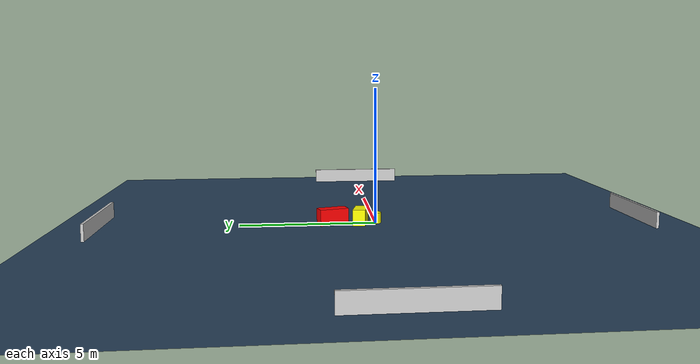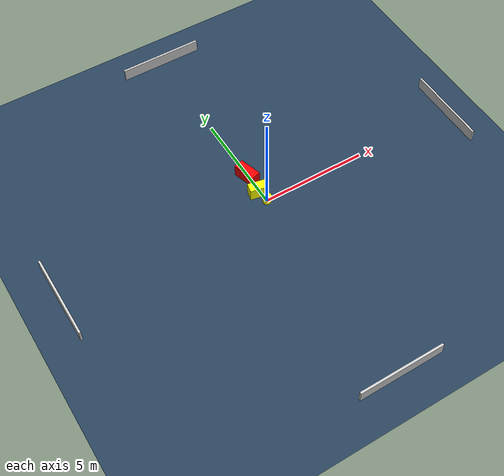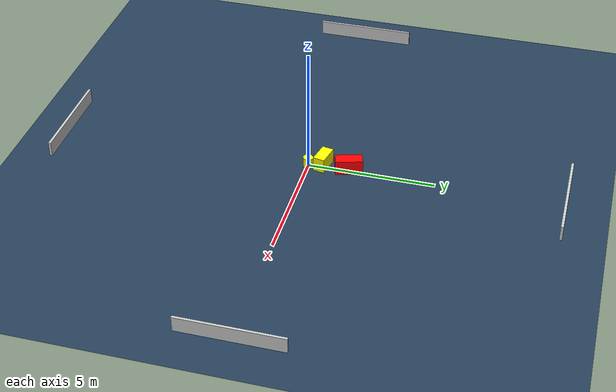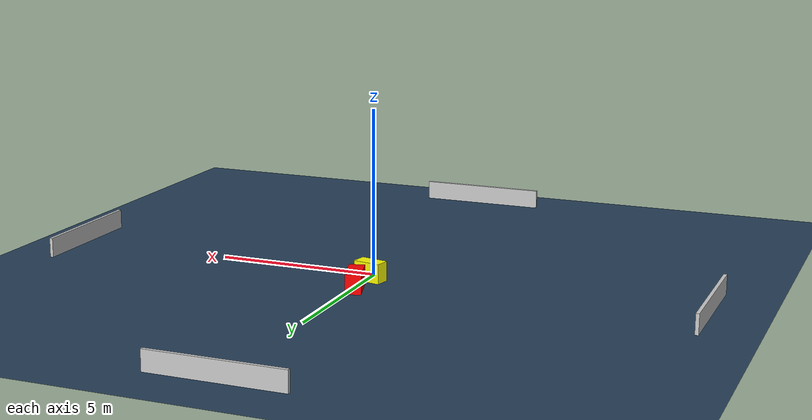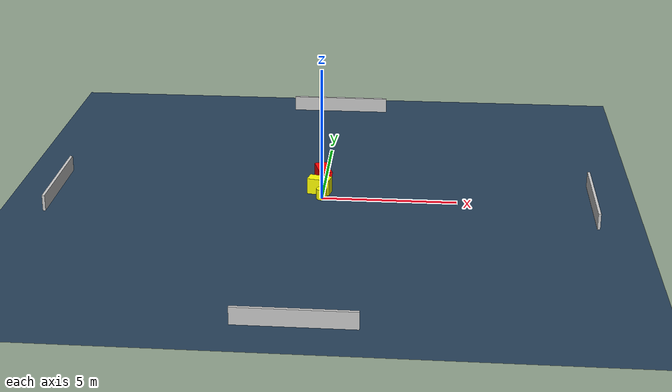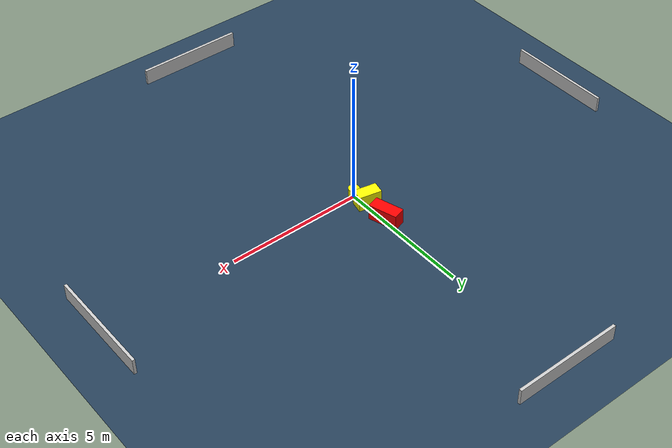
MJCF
<?xml version="1.0" ?>
<mujoco model="generated_environment">
  <option timestep="0.01" integrator="RK4" cone="elliptic"/>
  <default>
    <geom density="1"/>
  </default>
  <asset>
    <texture builtin="gradient" height="3072" name="skybox" rgb1="0.3 0.5 0.7" rgb2="0 0 0" type="skybox" width="512"/>
    <texture builtin="checker" height="300" name="groundplane" rgb1="0.2 0.3 0.4" rgb2="0.1 0.2 0.3" type="2d" width="300"/>
    <material name="groundplane" reflectance="0.2" texrepeat="5 5" texture="groundplane"/>
  </asset>
  <worldbody>
    <light dir="0 0 -1" directional="true" pos="0 0 1.5"/>
    <geom condim="3" friction="0.5 0.005 0.001" material="groundplane" name="floor" pos="0 0 0" size="0 0 0.05" type="plane"/>
    <body name="walls">
      <geom name="wall_1" condim="4" pos="-10.0 0.0 0.3" rgba="0.800000011920929 0.800000011920929 0.800000011920929 1.0" size="0.05 2.0 0.3" type="box"/>
      <geom name="wall_2" condim="4" pos="10.0 0.0 0.3" rgba="0.800000011920929 0.800000011920929 0.800000011920929 1.0" size="0.05 2.0 0.3" type="box"/>
      <geom name="wall_3" condim="4" pos="0.0 -10.0 0.3" rgba="0.800000011920929 0.800000011920929 0.800000011920929 1.0" size="2.0 0.05 0.3" type="box"/>
      <geom name="wall_4" condim="4" pos="0.0 10.0 0.3" rgba="0.800000011920929 0.800000011920929 0.800000011920929 1.0" size="2.0 0.05 0.3" type="box"/>
    </body>
    <body name="robot">
      <joint name="joint_x" type="slide" pos="0 0 0" axis="1 0 0"/>
      <joint name="joint_y" type="slide" pos="0 0 0" axis="0 1 0"/>
      <geom name="robot" type="cylinder" pos="0.0 0.0 0.2" size="0.2 0.2 0.0" mass="5.0" friction="1.0 0.005 0.0001" condim="4" rgba="1.0 1.0 0.0 1.0"/>
    </body>
    <body name="obstacle_1_movable">
      <geom name="obstacle_1_movable" condim="4" pos="-0.12566864648645537 0.5739241815298721 0.3" euler="0 0 78.06526260602276" friction="0.0 0.005 0.001" rgba="1.0 1.0 0.0 1.0" size="0.2299505050763721 0.422622645526886 0.3" type="box" mass="0.1"/>
      <joint type="free"/>
    </body>
    <body name="obstacle_2_static">
      <geom name="obstacle_2_static" condim="4" pos="-0.07001661750930949 1.60337114798659 0.3" euler="0 0 16.634120705839223" friction="0.0 0.005 0.001" rgba="1.0 0.0 0.0 1.0" size="0.23614036814530587 0.5353948199811943 0.3" type="box"/>
    </body>
  </worldbody>
  <actuator>
    <motor name="actuator_x" joint="joint_x" gear="1" ctrlrange="-1 1"/>
    <motor name="actuator_y" joint="joint_y" gear="1" ctrlrange="-1 1"/>
  </actuator>
</mujoco>
